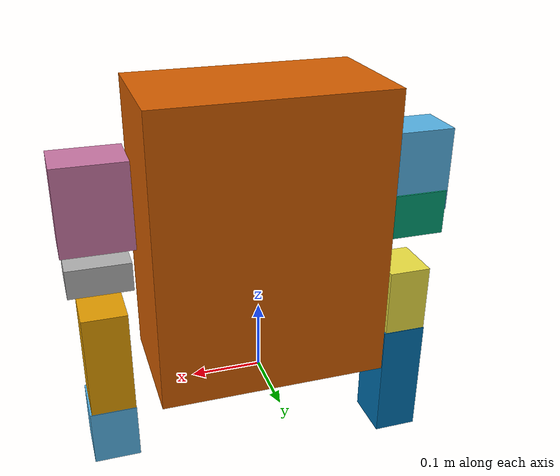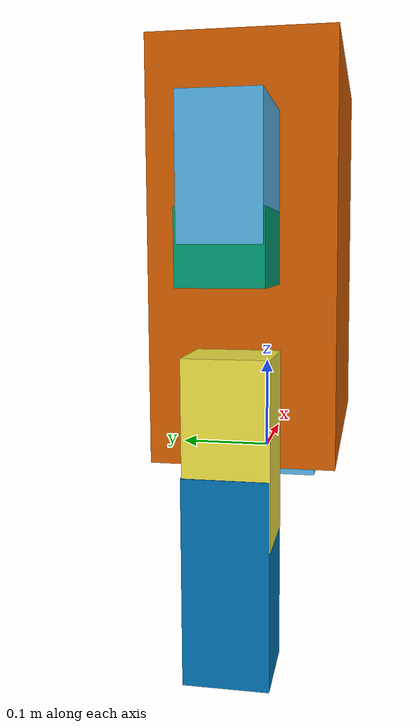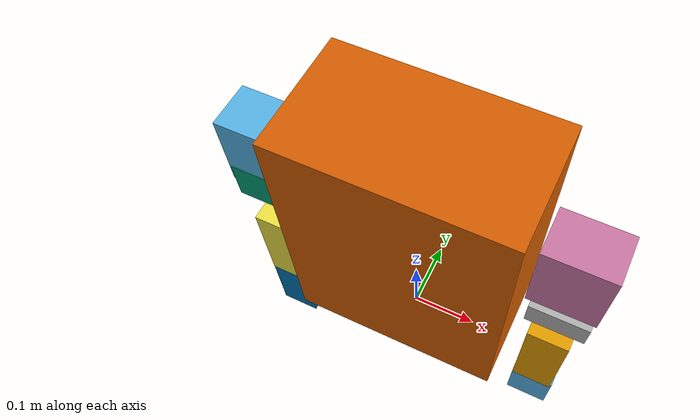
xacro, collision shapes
<?xml version='1.0' encoding='utf-8'?>
<robot name="upper_body" xmlns:xacro="http://www.ros.org/wiki/xacro">
    <xacro:property name="pkg_path" value="/home/me/mujoco_ws/src/urdf_ws/msp2/upper_body" />

    <link name="world" />

    <joint name="world_to_torso" type="fixed">
        <parent link="world" />
        <child link="torso" />
        <origin xyz="0 0 0" rpy="0 0 0" />
    </joint>
    <link name="shoulder_pitch_L">
        <inertial>
            <origin xyz="-2.9822940206258864e-09 0.0023697253446743416 -0.07332222037612565"
                rpy="0.0 -0.0 0.0" />
            <mass value="0.929" />
            <inertia ixx="0.0036823909502093632" iyy="0.0049318511022031775"
                izz="0.0032652138905275296" ixy="3.004974741260824e-15" iyz="1.9052648594435192e-05"
                ixz="-1.936759536807274e-13" />
        </inertial>
        <visual name="shoulder_pitch_L_visual">
            <origin xyz="0.024034139619806504 0.004284142603247837 -0.07549999567782473"
                rpy="-1.2246467991473527e-16 -1.5707963267948966 0" />
            <geometry>
                <mesh
                    filename="file://${pkg_path}/meshes/shoulder_pitch_L.stl"
                    scale="0.001 0.001 0.001" />
            </geometry>
        </visual>
        <collision>
            <origin xyz="-2.9822940206258864e-09 0.0023697253446743416 -0.07332222037612565"
                rpy="0 0 0" />
            <geometry>
                <box size="0.11850 0.06960 0.09600" />
            </geometry>
        </collision>
    </link>
    <link name="shoulder_roll_L">
        <inertial>
            <origin xyz="8.421351721921156e-07 -0.08195263254426284 0.04187599456999425"
                rpy="0.0 -0.0 0.0" />
            <mass value="0.640" />
            <inertia ixx="0.0017276614135966484" iyy="0.0015610880298233265"
                izz="0.0013193923223462356" ixy="3.500851171456265e-08" iyz="5.3484275224566944e-05"
                ixz="-5.467757722282583e-10" />
        </inertial>
        <visual name="shoulder_roll_L_visual">
            <origin xyz="2.387866153696905e-09 -0.10733900298344175 0.042250000000000225"
                rpy="-1.5707963267948972 1.5707963267948504 0" />

            <geometry>
                <mesh filename="file://${pkg_path}/meshes/shoulder_roll_L.stl"
                    scale="0.001 0.001 0.001" />
            </geometry>
        </visual>
        <collision>
            <origin xyz="8.421351721921156e-07 -0.06195263254426284 0.04187599456999425"
                rpy="-1.5707963267948972 1.5707963267948504 0" />
            <geometry>
                <box size="0.07350 0.08550 0.06400" />
            </geometry>
        </collision>
    </link>
    <link name="bicep_L">
        <inertial>
            <origin xyz="-0.0005723203152962952 0.001410881014232957 0.12116626590327798"
                rpy="0.0 -0.0 0.0" />
            <mass value="0.648" />
            <inertia ixx="0.0037969215681170967" iyy="0.0036123415510266738"
                izz="0.0016062588746600243" ixy="-1.8976897955941784e-06"
                iyz="0.00020503043704283268" ixz="1.3265367705076608e-05" />
        </inertial>
        <visual name="bicep_L_visual">
            <origin xyz="2.387865443154169e-09 0.006154939371237125 0.031002445607925398"
                rpy="-3.141592653589788 -1.3877787807819856e-16 -3.141592653589747" />
            <geometry>
                <mesh filename="file://${pkg_path}/meshes/bicep_L.stl"
                    scale="0.001 0.001 0.001" />
            </geometry>
        </visual>
        <collision>
            <origin xyz="-0.0005723203152962952 0.001410881014232957 0.12116626590327798"
                rpy="-3.141592653589788 -1.3877787807819856e-16 -3.141592653589747" />
            <geometry>
                <box size="0.06200 0.07500 0.16100" />
            </geometry>
        </collision>
    </link>
    <link name="forearm_L">
        <inertial>
            <origin xyz="-0.10159101279762651 0.0005243471037815409 -0.03149950855716892"
                rpy="0.0 -0.0 0.0" />
            <mass value="0.370" />
            <inertia ixx="0.00030912809555420917" iyy="0.0013020192723842763"
                izz="0.001221244139978483" ixy="-1.4023876748509459e-05" iyz="1.253019036062022e-07"
                ixz="-2.4279499227875127e-05" />
        </inertial>
        <visual name="forearm_L_visual">
            <origin xyz="0.0010849347224502993 0.0345240279638504 -0.02839103259804638"
                rpy="5.434147994988006e-15 1.570796326794759 0" />
            <geometry>
                <mesh filename="file://${pkg_path}/meshes/forearm_L.stl"
                    scale="0.001 0.001 0.001" />
            </geometry>
        </visual>
        <collision>
            <origin xyz="-0.10159101279762651 0.0005243471037815409 -0.03149950855716892"
                rpy="5.434147994988006e-15 1.570796326794759 0" />
            <geometry>
                <box size="0.06500 0.07500 0.18200" />
            </geometry>
        </collision>
    </link>
    <link name="torso">
        <inertial>
            <origin xyz="0.0021714977501299374 0.0013900312115490135 0.22276245814689777"
                rpy="0.0 0.0 0.0" />
            <mass value="4.529" />
            <inertia ixx="0.13599394150171207" iyy="0.20073940176087351" izz="0.11603157367795323"
                ixy="2.555616991182087e-05" iyz="-0.000477378424322212" ixz="0.00037720779210067244" />
        </inertial>
        <visual name="torso_visual">
            <origin xyz="0.0 0.0 0.0" rpy="0.0 0.0 0.0" />
            <geometry>
                <mesh filename="file://${pkg_path}/meshes/torso.stl"
                    scale="0.001 0.001 0.001" />
            </geometry>
        </visual>
        <collision>
            <origin xyz="0.0021714977501299374 0.0013900312115490135 0.22276245814689777"
                rpy="0 0 0" />
            <geometry>
                <box size="0.31866 0.17962 0.40628" />
            </geometry>
        </collision>
    </link>
    <link name="shoulder_pitch_R">
        <inertial>
            <origin xyz="-2.984584952514524e-09 -0.0023697253446693365 -0.07332222037612693"
                rpy="0.0 -0.0 0.0" />
            <mass value="0.929" />
            <inertia ixx="0.003682390950209391" iyy="0.0049318511022033995"
                izz="0.003265213890527474" ixy="3.00454106039183e-15" iyz="-1.9052648594318532e-05"
                ixz="1.9367370512935716e-13" />
        </inertial>
        <visual name="shoulder_pitch_R_visual">
            <origin xyz="-0.024034145586685512 -0.004284142603242705 -0.07549999567782618"
                rpy="-3.141592653589793 -1.5707963267948286 0" />
            <geometry>
                <mesh
                    filename="file://${pkg_path}/meshes/shoulder_pitch_R.stl"
                    scale="0.001 0.001 0.001" />
            </geometry>
        </visual>
        <collision>
            <origin xyz="-2.984584952514524e-09 -0.0023697253446693365 -0.07332222037612693"
                rpy="0 0 0" />
            <geometry>
                <box size="0.11850 0.06960 0.09600" />
            </geometry>
        </collision>
    </link>
    <link name="shoulder_roll_R">
        <inertial>
            <origin xyz="8.334908235241301e-07 -0.08195263254425882 0.04187599456998862"
                rpy="0.0 -0.0 0.0" />
            <mass value="0.640" />
            <inertia ixx="0.0017276614135966623" iyy="0.0015610880298232849"
                izz="0.0013193923223462634" ixy="3.500851172844044e-08" iyz="5.348427522456987e-05"
                ixz="-5.467757969480679e-10" />
        </inertial>
        <visual name="shoulder_roll_R_visual">
            <origin xyz="-6.256482514288564e-09 -0.10733900298343758 0.042249999999994445"
                rpy="-1.570796326794898 1.5707963267948657 0" />
            <geometry>
                <mesh filename="file://${pkg_path}/meshes/shoulder_roll_R.stl"
                    scale="0.001 0.001 0.001" />
            </geometry>
        </visual>
        <collision>
            <origin xyz="8.334908235241301e-07 -0.095263254425882 0.04187599456998862"
                rpy="-1.570796326794898 1.5707963267948657 0" />
            <geometry>
                <box size="0.07350 0.08550 0.0400" />
            </geometry>
        </collision>
    </link>
    <link name="bicep_R">
        <inertial>
            <origin xyz="-0.0005723189596449174 0.0014108810142265504 0.1211662659032739"
                rpy="0.0 -0.0 0.0" />
            <mass value="0.648" />
            <inertia ixx="0.003796921568117069" iyy="0.0036123415510265905"
                izz="0.0016062588746600243" ixy="-1.897689795597431e-06" iyz="0.0002050304370428447"
                ixz="1.3265367705093956e-05" />
        </inertial>
        <visual name="bicep_R_visual">
            <origin xyz="3.7435172117739055e-09 0.0061549393712311586 0.031002445607921276"
                rpy="3.141592653589793 -1.9428902930940274e-16 3.141592653589763" />
            <geometry>
                <mesh filename="file://${pkg_path}/meshes/bicep_R.stl"
                    scale="0.001 0.001 0.001" />
            </geometry>
        </visual>
        <collision>
            <origin xyz="-0.0005723189596449174 0.0014108810142265504 0.1211662659032739"
                rpy="3.141592653589793 -1.9428902930940274e-16 3.141592653589763" />
            <geometry>
                <box size="0.06200 0.07500 0.16100" />
            </geometry>
        </collision>
    </link>
    <link name="forearm_R">
        <inertial>
            <origin xyz="-0.10159101279762243 -0.0005243471037758607 0.03149950720151754"
                rpy="0.0 -0.0 0.0" />
            <mass value="0.370" />
            <inertia ixx="0.00030912809555420223" iyy="0.0013020192723843318"
                izz="0.001221244139978487" ixy="1.402387674851181e-05" iyz="1.2530190361948367e-07"
                ixz="2.4279499227875994e-05" />
        </inertial>
        <visual name="forearm_R_visual">
            <origin xyz="0.0010849347224542428 -0.03452402796384508 0.028391031242390882"
                rpy="-3.141592653589793 -1.5707963267948788 0" />
            <geometry>
                <mesh filename="file://${pkg_path}/meshes/forearm_R.stl"
                    scale="0.001 0.001 0.001" />
            </geometry>
        </visual>
        <collision>
            <origin xyz="-0.10159101279762243 -0.0005243471037758607 0.03149950720151754"
                rpy="-3.141592653589793 -1.5707963267948788 0" />
            <geometry>
                <box size="0.06500 0.07500 0.08200" />
            </geometry>
        </collision>
    </link>
    <joint name="torso_shoulder_pitch_joint_L" type="revolute">
        <origin xyz="-0.14601655 0.0 0.28950227" rpy="3.141592653589793 -1.5707963267948966 0" />
        <parent link="torso" />
        <child link="shoulder_pitch_L" />
        <axis xyz="0.0 -1.631557288134886e-31 1.0" />
        <limit lower="-3.141593" upper="3.141593" effort="100" velocity="1.0" />
    </joint>
    <joint name="shoulder_pitch_L_shoulder_roll_joint_L" type="revolute">
        <origin xyz="3.552713678800501e-17 -0.04025 -0.07550000000000003"
            rpy="-1.5707963267948972 -1.570796326794896 0" />
        <parent link="shoulder_pitch_L" />
        <child link="shoulder_roll_L" />
        <axis xyz="-4.7037971017350806e-33 6.383782391594643e-16 -1.0" />
        <limit lower="-0.087266" upper="3.316126" effort="100" velocity="1.0" />
    </joint>
    <joint name="shoulder_roll_L_bicep_yaw_joint_L" type="revolute">
        <origin xyz="0.0 -0.11133900000000005 0.04224999999999993"
            rpy="1.5707963267948972 6.637660045332136e-30 4.2373377318782595e-45" />
        <parent link="shoulder_roll_L" />
        <child link="bicep_L" />
        <axis xyz="0.0 0.0 1.0" />
        <limit lower="-3.141593" upper="3.141593" effort="100" velocity="1.0" />
    </joint>
    <joint name="bicep_L_elbow_joint_L" type="revolute">
        <origin xyz="0.03200000000000003 0.0 0.131" rpy="3.074502118303549e-14 1.5707963267948966 0" />
        <parent link="bicep_L" />
        <child link="forearm_L" />
        <axis xyz="2.465190328815662e-32 -3.0745021183035504e-14 -1.0" />
        <limit lower="-2.356194" upper="0.0" effort="100" velocity="1.0" />
    </joint>
    <joint name="torso_shoulder_pitch_joint_R" type="revolute">
        <origin xyz="0.14601655 0.0 0.28950227" rpy="1.3038644304772321e-43 -1.5707963267948966 0" />
        <parent link="torso" />
        <child link="shoulder_pitch_R" />
        <axis xyz="-0.0 1.3038644304772321e-43 1.0" />
        <limit lower="-3.141593" upper="3.141593" effort="100" velocity="1.0" />
    </joint>
    <joint name="shoulder_pitch_R_shoulder_roll_joint_R" type="revolute">
        <origin xyz="-1.0658141036401502e-16 0.04025 -0.07550000000000003"
            rpy="1.570796326794896 1.5707963267948954 0" />
        <parent link="shoulder_pitch_R" />
        <child link="shoulder_roll_R" />
        <axis xyz="-1.2621774483536422e-29 6.383782391594643e-16 -1.0" />
        <limit lower="-3.316126" upper="0.087266" effort="100" velocity="1.0" />
    </joint>
    <joint name="shoulder_roll_R_bicep_yaw_joint_R" type="revolute">
        <origin xyz="-1.0000000010279564e-08 -0.11133900000000005 0.04224999999999993"
            rpy="1.5707963267948972 1.3642526529328026e-29 8.709092063478704e-45" />
        <parent link="shoulder_roll_R" />
        <child link="bicep_R" />
        <axis xyz="0.0 -1.9721522630525295e-31 1.0" />
        <limit lower="-3.141593" upper="3.141593" effort="100" velocity="1.0" />
    </joint>
    <joint name="bicep_R_elbow_joint_R" type="revolute">
        <origin xyz="0.031999999999999994 0.0 0.131" rpy="-3.1415926535897625 1.5707963267948966 0" />
        <parent link="bicep_R" />
        <child link="forearm_R" />
        <axis xyz="0.0 -3.0745021183035504e-14 -1.0" />
        <limit lower="0.0" upper="2.356194" effort="100" velocity="1.0" />
    </joint>
</robot>
